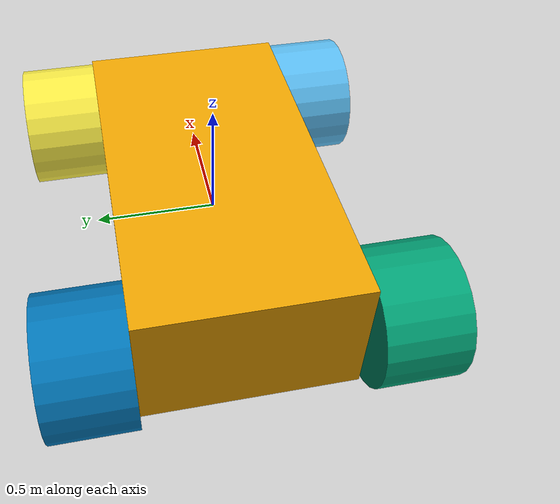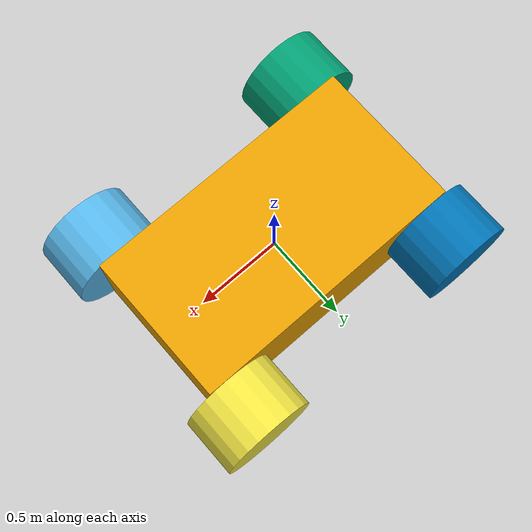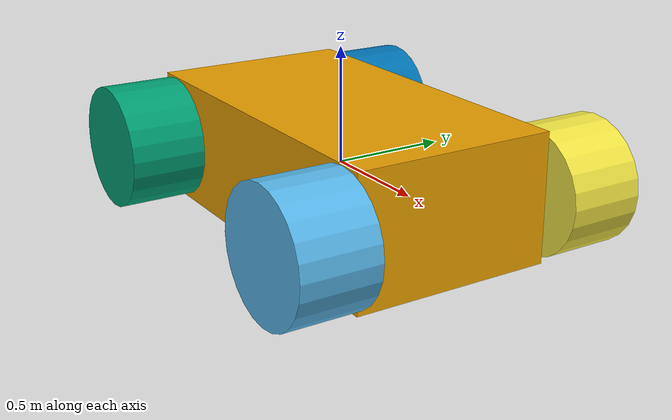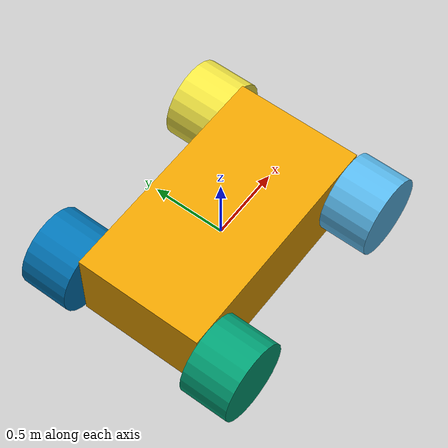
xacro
<?xml version="1.0"?>

<robot xmlns:xacro="http://www.ros.org/wiki/xacro" name="mobile_robot">

    <!-- 수정된 body 링크 -->
    <link name="body">
        <visual>
            <geometry>
                <box size="1.6 0.87 0.55"/> <!-- 수정된 크기 (1,600*1,160*550 mm) -->
            </geometry>
        </visual>

        <collision>
            <geometry>
                <box size="1.6 0.87 0.55"/> <!-- 수정된 크기 (1,600*1,160*550 mm) -->
            </geometry>
        </collision>

        <inertial>
          <mass value="150"/>
          <inertia ixx="0.4967" ixy="0.0" ixz="0" iyy="1.4967" iyz="0" izz="1.6667"/>
        </inertial>
    </link>

<!--............................................rf_wheel...................................................... -->

    <link name= "rf_wheel">
        <visual>
	        <origin rpy="1.570795 0 0" xyz="0 0 0"/>
	        <geometry>
	            <cylinder length="0.33" radius="0.27"/>
	        </geometry>
        </visual>

        <collision>
	        <origin rpy="1.570795 0 0" xyz="0 0 0"/>
	            <geometry>
	                <cylinder length="0.33" radius="0.27"/>
	            </geometry>
        </collision>

        <inertial>
	        <origin rpy="1.570795 0 0" xyz="0 0 0"/>
            <mass value="1"/>
            <inertia ixx="0.06583" ixy="0.0" ixz="0.0" iyy="0.06583" iyz="0.0" izz="0.125"/>
        </inertial>
    </link>

    <joint name="body_rf_wheel" type="continuous">
        <axis xyz="0 1 0"/>
        <parent link="body"/>
        <child link="rf_wheel"/>
        <origin rpy="0 0 0" xyz="0.7 -0.6 0"/>
        <limit effort="100" velocity="1.0"/>
    </joint>

<!--............................................rb_wheel...................................................... -->

    <link name= "rb_wheel">
        <visual>
	        <origin rpy="1.570795 0 0" xyz="0 0 0"/>
	        <geometry>
	            <cylinder length="0.33" radius="0.27"/>
	        </geometry>
        </visual>

        <collision>
	        <origin rpy="1.570795 0 0" xyz="0 0 0"/>
	        <geometry>
	            <cylinder length="0.33" radius="0.27"/>
	        </geometry>
        </collision>

        <inertial>
	        <origin rpy="1.570795 0 0" xyz="0 0 0"/>
            <mass value="1"/>
            <inertia ixx="0.06583" ixy="0.0" ixz="0.0" iyy="0.06583" iyz="0.0" izz="0.125"/>
        </inertial>
    </link>

    <joint name="body_rb_wheel" type="continuous">
        <axis xyz="0 1 0"/>
        <parent link="body"/>
        <child link="rb_wheel"/>
        <origin rpy="0 0 0" xyz="-0.7 -0.6 0"/>
        <limit effort="100" velocity="1.0"/>
    </joint>

<!--............................................lf_wheel...................................................... -->

    <link name= "lf_wheel">
        <visual>
	        <origin rpy="1.570795 0 0" xyz="0 0 0"/>
	        <geometry>
	            <cylinder length="0.33" radius="0.27"/>
	        </geometry>
        </visual>

        <collision>
	        <origin rpy="1.570795 0 0" xyz="0 0 0"/>
	        <geometry>
	            <cylinder length="0.33" radius="0.27"/>
	        </geometry>
        </collision>

        <inertial>
	        <origin rpy="1.570795 0 0" xyz="0 0 0"/>
            <mass value="1"/>
            <inertia ixx="0.06583" ixy="0.0" ixz="0.0" iyy="0.06583" iyz="0.0" izz="0.125"/>
        </inertial>
    </link>

    <joint name="body_lf_wheel" type="continuous">
        <axis xyz="0 1 0"/>
        <parent link="body"/>
        <child link="lf_wheel"/>
        <origin rpy="0 0 0" xyz="0.7 0.6 0"/>
        <limit effort="100" velocity="1.0"/>
    </joint>

<!--............................................lb_wheel...................................................... -->

    <link name= "lb_wheel">
        <visual>
	        <origin rpy="1.570795 0 0" xyz="0 0 0"/>
	        <geometry>
	            <cylinder length="0.33" radius="0.27"/>
	        </geometry>
        </visual>

        <collision>
	        <origin rpy="1.570795 0 0" xyz="0 0 0"/>
	        <geometry>
	            <cylinder length="0.33" radius="0.27"/>
	        </geometry>
        </collision>

        <inertial>
	        <origin rpy="1.570795 0 0" xyz="0 0 0"/>
            <mass value="1"/>
            <inertia ixx="0.06583" ixy="0.0" ixz="0.0" iyy="0.06583" iyz="0.0" izz="0.125"/>
        </inertial>
    </link>

    <joint name="body_lb_wheel" type="continuous">
        <axis xyz="0 1 0"/>
        <parent link="body"/>
        <child link="lb_wheel"/>
        <origin rpy="0 0 0" xyz="-0.7 0.6 0"/>
        <limit effort="100" velocity="1.0"/>
    </joint>

<!--............................................trnasmission...................................................... -->

    <transmission name="rf_transmission">
        <type>transmission_interface/SimpleTransmission</type>
        <actuator name="rf_motor">
            <mechanicalReduction>1</mechanicalReduction>
        </actuator>
        <joint name="body_rf_wheel">
            <hardwareInterface>hardware_interface/PositionJointInterface</hardwareInterface>
        </joint>
    </transmission>

    <transmission name="rb_transmission">
        <type>transmission_interface/SimpleTransmission</type>
        <actuator name="rb_motor">
            <mechanicalReduction>1</mechanicalReduction>
        </actuator>
        <joint name="body_rb_wheel">
            <hardwareInterface>hardware_interface/PositionJointInterface</hardwareInterface>
        </joint>
    </transmission>

    <transmission name="lf_transmission">
        <type>transmission_interface/SimpleTransmission</type>
        <actuator name="lf_motor">
            <mechanicalReduction>1</mechanicalReduction>
        </actuator>
        <joint name="body_lf_wheel">
            <hardwareInterface>hardware_interface/PositionJointInterface</hardwareInterface>
        </joint>
    </transmission>

    <transmission name="lb_transmission">
        <type>transmission_interface/SimpleTransmission</type>
        <actuator name="lb_motor">
            <mechanicalReduction>1</mechanicalReduction>
        </actuator>
        <joint name="body_lb_wheel">
            <hardwareInterface>hardware_interface/PositionJointInterface</hardwareInterface>
        </joint>
    </transmission>

    <gazebo>
        <plugin name="skid_steer_drive_controller" filename="libgazebo_ros_skid_steer_drive.so">
   	        <updateRate>100.0</updateRate>
   	        <robotNamespace>/</robotNamespace>
   	        <leftFrontJoint>body_lf_wheel</leftFrontJoint>
   	        <rightFrontJoint>body_rf_wheel</rightFrontJoint>
   	        <leftRearJoint>body_lb_wheel</leftRearJoint>
   	        <rightRearJoint>body_rb_wheel</rightRearJoint>
  	        <wheelSeparation>0.2</wheelSeparation>
  	        <wheelDiameter>0.4</wheelDiameter>
	        <torque>100</torque>
  	        <robotBaseFrame>body</robotBaseFrame>
  	        <topicName>cmd_vel</topicName>
  	        <broadcastTF>false</broadcastTF>
  	    </plugin>
    </gazebo>

</robot>
